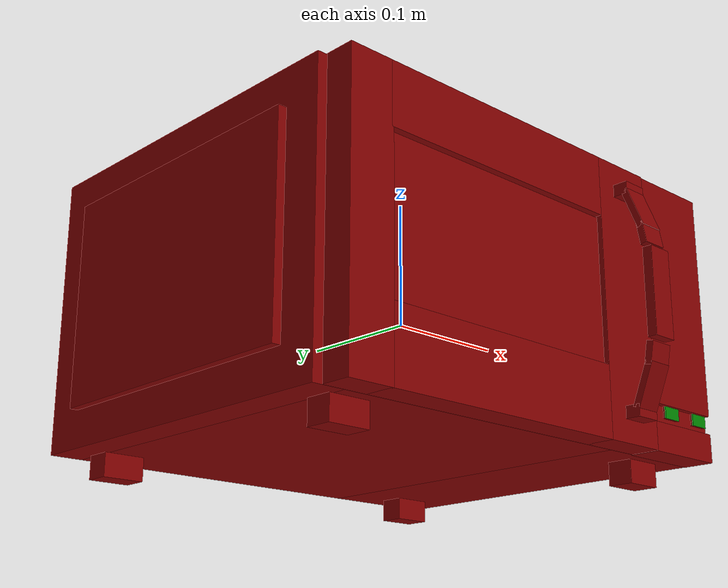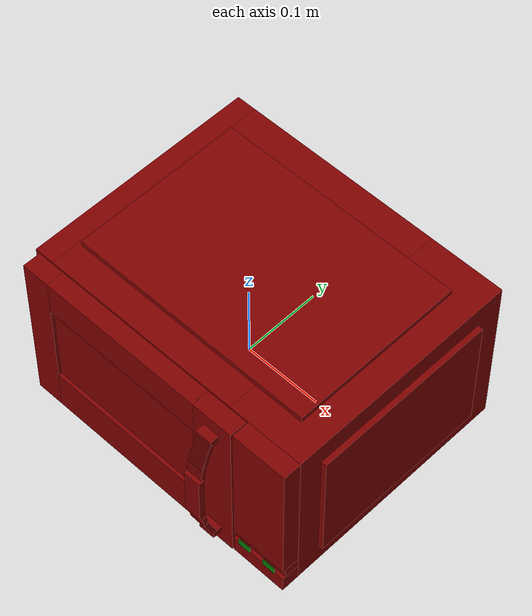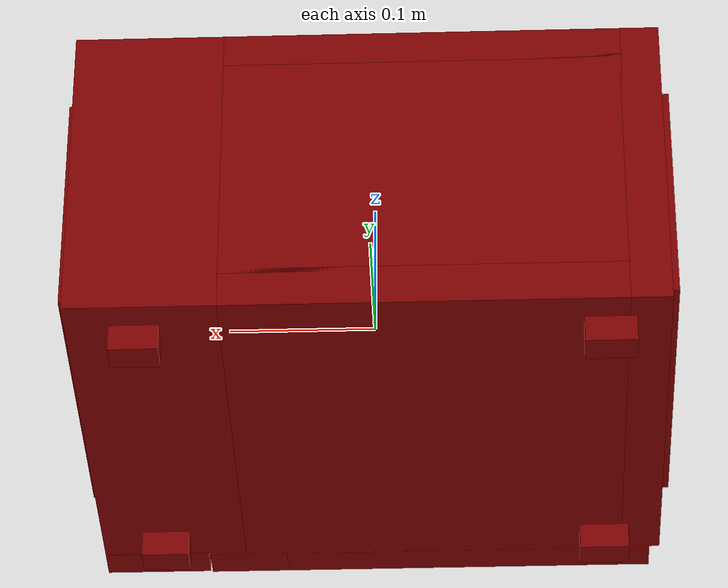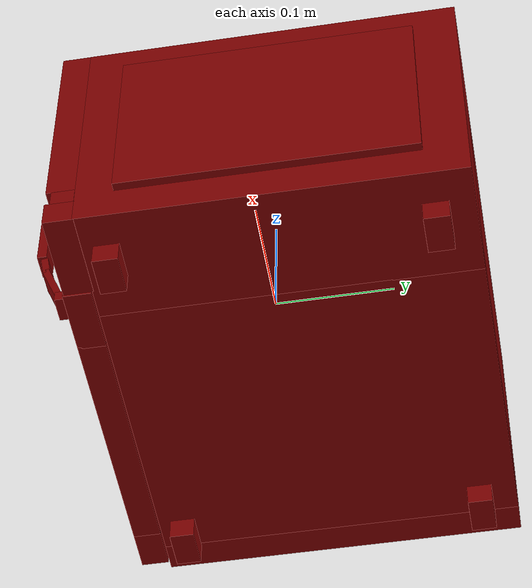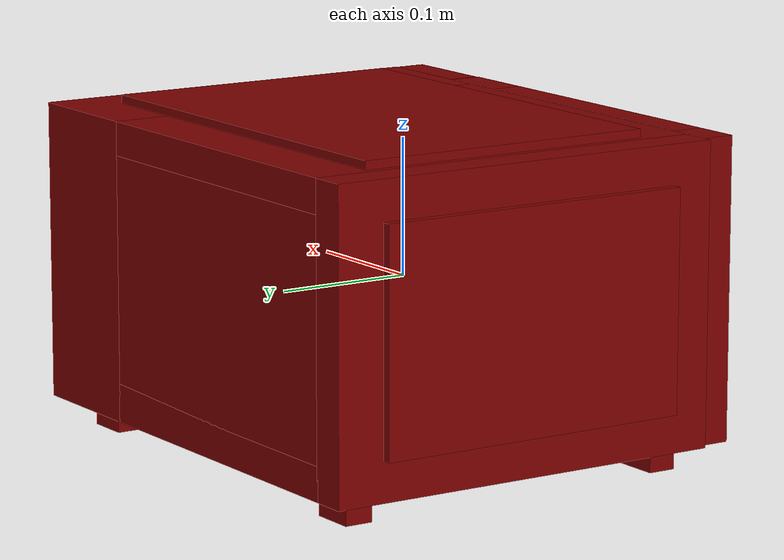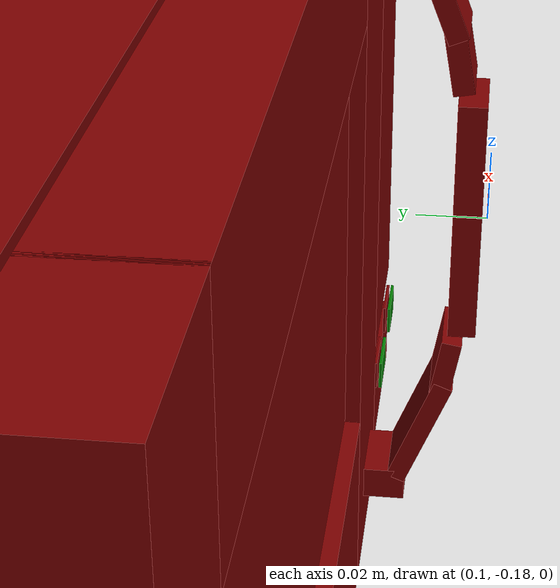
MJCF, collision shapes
<mujoco model="model">
  <compiler angle="radian"/>
  <asset>
    <mesh file="visuals/door.obj" name="door_vis"/>
    <mesh file="visuals/door_Clear.obj" name="door_Clear_vis"/>
    <mesh file="visuals/Body001.obj" name="Body001_vis"/>
    <mesh file="visuals/Button001.obj" name="Button001_vis"/>
    <mesh file="visuals/Button002.obj" name="Button002_vis"/>
    <mesh file="visuals/Disc001.obj" name="Disc001_vis"/>
    <texture file="visuals/T_BC001.png" name="Body001_material" type="2d"/>
    <material name="Body001_material" rgba="1 1 1 1.0" texture="Body001_material" shininess="0.5" specular="0.3103448502657381"/>
    <texture file="visuals/T_BC001.png" name="door_material" type="2d"/>
    <material name="door_material" rgba="1 1 1 1.0" texture="door_material" shininess="0.5" specular="0.3103448502657381"/>
    <texture file="visuals/T_BC001.png" name="door_Clear_material" type="2d"/>
    <material name="door_Clear_material" rgba="1 1 1 0.800000011920929" texture="door_Clear_material" shininess="0.5" specular="0.3103448502657381"/>
    <texture file="visuals/T_BC001.png" name="Button001_material" type="2d"/>
    <material name="Button001_material" rgba="1 1 1 1.0" texture="Button001_material" shininess="0.5" specular="0.3103448502657381"/>
    <texture file="visuals/T_BC001.png" name="Button002_material" type="2d"/>
    <material name="Button002_material" rgba="1 1 1 1.0" texture="Button002_material" shininess="0.5" specular="0.3103448502657381"/>
    <texture file="visuals/T_BC001.png" name="Disc001_material" type="2d"/>
    <material name="Disc001_material" rgba="1 1 1 1.0" texture="Disc001_material" shininess="0.5" specular="0.3103448502657381"/>
  </asset>
  <default>
    <default class="visual">
      <geom conaffinity="0" contype="0" group="1" type="mesh"/>
    </default>
    <default class="collision">
      <geom group="0" rgba="0.5 0 0 0.5"/>
    </default>
    <default class="spawn">
      <geom group="0" rgba="1 1 1 0.5" contype="0" conaffinity="0"/>
      <site group="0" rgba="1 1 1 0.5"/>
    </default>
    <default class="region">
      <geom group="1" conaffinity="0" contype="0" rgba="0 1 0 0"/>
    </default>
  </default>
  <worldbody>
    <body>
      <body name="object">
        <geom class="collision" type="box" pos="0.1391647756099701 -0.1490889936685562 -0.07307254523038864" size="0.008458821102976799 0.0004508761630859226 0.004545900039374828" quat="1.0 0.0 0.0 0.0" name="start_button" rgba="0.0 0.5 0 0.5"/>
        <geom class="collision" type="box" pos="0.17508941888809204 -0.1490889936685562 -0.07310604304075241" size="0.008458821102976799 0.0004508761630859226 0.004545900039374828" quat="1.0 0.0 0.0 0.0" name="stop_button" rgba="0.0 0.5 0 0.5"/>
        <geom class="collision" type="box" pos="-0.04159218445420265 -0.001982901245355606 -0.05614791437983513" size="0.11045978963375092 0.11045978963375092 0.0024821958504617214" quat="1.0 0.0 0.0 0.0" name="tray" rgba="0 1 0 0.5"/>
        <geom mesh="Body001_vis" type="mesh" solimp="0.998 0.998 0.001" solref="0.001 1" density="100" friction="0.95 0.3 0.1" class="visual" material="Body001_material"/>
        <geom class="collision" type="box" pos="-0.18025314807891846 0.027802564203739166 0.005983977112919092" size="0.013358832336962223 0.15167395770549774 0.10900428146123886" quat="1.0 0.0 0.0 0.0"/>
        <geom class="collision" type="box" pos="0.14425525069236755 0.027802564203739166 0.005983977112919092" size="0.04935670644044876 0.15167395770549774 0.10900428146123886" quat="1.0 0.0 0.0 0.0"/>
        <geom class="collision" type="box" pos="-0.0362883061170578 0.02780255116522312 0.10275974869728088" size="0.01222850102931261 0.15167395770549774 0.1317581832408905" quat="0.7071068286895752 -4.750302551315144e-08 0.7071067094802856 4.7503014855010406e-08"/>
        <geom class="collision" type="box" pos="-0.0362883061170578 0.02780255116522312 -0.08892325311899185" size="0.014097047038376331 0.15167395770549774 0.1317581832408905" quat="0.7071068286895752 -4.750302551315144e-08 0.7071067094802856 4.7503014855010406e-08"/>
        <geom class="collision" type="box" pos="-0.0362883098423481 0.14821013808250427 0.0076854294165968895" size="0.03126637265086174 0.08601274341344833 0.1317581832408905" quat="0.4999999701976776 0.5 0.5000000596046448 0.4999999403953552"/>
        <geom class="collision" type="box" pos="-0.001670405501499772 0.0256187804043293 0.11840248107910156" size="0.003136024810373783 0.11250162869691849 0.1611160784959793" quat="0.7071068286895752 -4.750302551315144e-08 0.7071067094802856 4.7503014855010406e-08"/>
        <geom class="collision" type="box" pos="-0.19688734412193298 0.025606103241443634 0.006056216079741716" size="0.00337331835180521 0.11890270560979843 0.08001849800348282" quat="1.0 -4.004205956609566e-15 -5.960463056453591e-08 -6.717942824252532e-08"/>
        <geom class="collision" type="box" pos="0.19688449800014496 0.025606103241443634 0.006056216079741716" size="0.0033761418890208006 0.11890270560979843 0.08001849800348282" quat="1.0 -4.004205956609566e-15 -5.960463056453591e-08 -6.717942824252532e-08"/>
        <geom class="collision" type="box" pos="0.1575535535812378 -0.13480769097805023 0.024206168949604034" size="0.03605840727686882 0.012139788828790188 0.09060600399971008" quat="1.0 0.0 0.0 0.0"/>
        <geom class="collision" type="box" pos="0.1575535535812378 -0.13480769097805023 -0.09191380441188812" size="0.03605840727686882 0.012139788828790188 0.011282567866146564" quat="1.0 0.0 0.0 0.0"/>
        <geom class="collision" type="box" pos="0.1575535535812378 -0.13333268463611603 -0.07345106452703476" size="0.03605840727686882 0.009348908439278603 0.007389742881059647" quat="1.0 0.0 0.0 0.0"/>
        <geom class="collision" type="box" pos="0.1489536464214325 -0.10338227450847626 -0.1122860312461853" size="0.016204161569476128 0.010294051840901375 0.009252495132386684" quat="1.0 0.0 0.0 0.0"/>
        <geom class="collision" type="box" pos="-0.1545639932155609 -0.10338227450847626 -0.1122860312461853" size="0.01670595072209835 0.010294051840901375 0.009252495132386684" quat="1.0 0.0 0.0 0.0"/>
        <geom class="collision" type="box" pos="0.1489536464214325 0.1492520421743393 -0.1122860312461853" size="0.016204161569476128 0.010294051840901375 0.009252495132386684" quat="1.0 0.0 0.0 0.0"/>
        <geom class="collision" type="box" pos="-0.1545639932155609 0.1492520421743393 -0.1122860312461853" size="0.01670595072209835 0.010294051840901375 0.009252495132386684" quat="1.0 0.0 0.0 0.0"/>
        <body name="door">
          <joint axis="0.0 0.0 1.0" pos="-0.1817634403705597 -0.13645607233047485 0.0058079008013010025" limited="true" name="microjoint" range="-1.5707963267948966 0.0" type="hinge" damping="1" frictionloss="1" armature=".01" stiffness="0.05"/>
          <geom mesh="door_vis" type="mesh" solimp="0.998 0.998 0.001" solref="0.001 1" density="100" friction="0.95 0.3 0.1" class="visual" material="door_material"/>
          <geom class="collision" type="box" pos="-0.16829226911067963 -0.13651078939437866 0.005807910580188036" size="0.011538033373653889 0.10900427401065826 0.01846720464527607" quat="0.4999999701976776 0.5 0.5000000596046448 0.4999999403953552"/>
          <geom class="collision" type="box" pos="0.09259803593158722 -0.13651078939437866 0.005807909648865461" size="0.011538032442331314 0.10900427401065826 0.027508338913321495" quat="0.4999999701976776 0.5 0.5000000596046448 0.4999999403953552"/>
          <geom class="collision" type="box" pos="-0.042233772575855255 -0.13651080429553986 0.09120413661003113" size="0.011538032442331314 0.10900427401065826 0.023608049377799034" quat="7.472144147868676e-08 0.7071067094802856 0.7071068286895752 3.204871035222823e-08"/>
          <geom class="collision" type="box" pos="-0.042233772575855255 -0.13651080429553986 -0.07562852650880814" size="0.011538032442331314 0.10900427401065826 0.027567848563194275" quat="7.472144147868676e-08 0.7071067094802856 0.7071068286895752 3.204871035222823e-08"/>
          <geom class="collision" type="box" pos="0.09299615025520325 -0.15359172224998474 0.09202709794044495" size="0.006321795750409365 0.004779924638569355 0.010607033967971802" quat="0.4999999701976776 0.5 0.5000000596046448 0.4999999403953552"/>
          <geom class="collision" type="box" pos="0.09299615025520325 -0.1637401282787323 0.07395224273204803" size="0.01755206286907196 0.0028752549551427364 0.010607033967971802" quat="0.1339872181415558 0.6942963600158691 0.13398760557174683 0.6942962408065796"/>
          <geom class="collision" type="box" pos="0.09299615025520325 -0.17058181762695312 0.0519951656460762" size="0.008785058744251728 0.0028752547223120928 0.010607033967971802" quat="0.06278882175683975 0.7043136358261108 0.06278854608535767 0.7043134570121765"/>
          <geom class="collision" type="box" pos="0.09299615025520325 -0.15359172224998474 -0.08070486038923264" size="0.006321795750409365 0.004779924638569355 0.010607033967971802" quat="0.5000000596046448 -0.49999988079071045 -0.5000001192092896 0.4999999403953552"/>
          <geom class="collision" type="box" pos="0.09299615025520325 -0.1637401282787323 -0.062094684690237045" size="0.01755206473171711 0.0028752547223120928 0.010607033967971802" quat="0.13398747146129608 -0.6942963004112244 -0.13398753106594086 0.6942963004112244"/>
          <geom class="collision" type="box" pos="0.09299615025520325 -0.17058181762695312 -0.04013760760426521" size="0.008785059675574303 0.0028752547223120928 0.010607033967971802" quat="0.06278882175683975 -0.7043135166168213 -0.0627887174487114 0.7043135762214661"/>
          <geom class="collision" type="box" pos="0.09299615025520325 -0.17462469637393951 0.005770817864686251" size="0.003933775704354048 0.03446405753493309 0.010607033967971802" quat="0.4999999701976776 0.5 0.5000000596046448 0.4999999403953552" name="door_handle"/>
          <body name="door_Clear">
            <geom mesh="door_Clear_vis" type="mesh" solimp="0.998 0.998 0.001" solref="0.001 1" density="100" friction="0.95 0.3 0.1" class="visual" material="door_Clear_material"/>
            <geom class="collision" type="box" pos="-0.04249154403805733 -0.14076390862464905 0.009767692536115646" size="0.0030851110350340605 0.05685120448470116 0.10778980702161789" quat="0.4999999701976776 0.5 0.5000000596046448 0.4999999403953552"/>
          </body>
        </body>
        <body name="Button001">
          <joint axis="0.0 1.0 0.0" pos="0.1391647756099701 -0.14831411838531494 -0.07307254523038864" limited="true" name="Button001_joint" range="0.0 0.0015" type="slide" damping="1" frictionloss="1" armature=".01" stiffness="0.05"/>
          <geom mesh="Button001_vis" type="mesh" solimp="0.998 0.998 0.001" solref="0.001 1" density="100" friction="0.95 0.3 0.1" class="visual" material="Button001_material"/>
          <geom class="collision" type="box" pos="0.1391647756099701 -0.14755727350711823 -0.07307254523038864" size="0.008458821102976799 0.0004508761630859226 0.004545900039374828" quat="1.0 0.0 0.0 0.0"/>
        </body>
        <body name="Button002">
          <joint axis="0.0 1.0 0.0" pos="0.17508941888809204 -0.14831411838531494 -0.07310604304075241" limited="true" name="Button002_joint" range="0.0 0.0015" type="slide" damping="1" frictionloss="1" armature=".01" stiffness="0.05"/>
          <geom mesh="Button002_vis" type="mesh" solimp="0.998 0.998 0.001" solref="0.001 1" density="100" friction="0.95 0.3 0.1" class="visual" material="Button002_material"/>
          <geom class="collision" type="box" pos="0.17508941888809204 -0.14755727350711823 -0.07310604304075241" size="0.008458821102976799 0.0004508761630859226 0.004545900039374828" quat="1.0 0.0 0.0 0.0"/>
        </body>
        <body name="Disc001">
          <joint axis="0.0 0.0 1.0" pos="-0.04159218445420265 -0.001982901245355606 -0.06573697924613953" limited="false" name="Disc001_joint" range="0 360" type="hinge" damping="1" frictionloss="1" armature=".01" stiffness="0.05"/>
          <geom mesh="Disc001_vis" type="mesh" solimp="0.998 0.998 0.001" solref="0.001 1" density="100" friction="0.95 0.3 0.1" class="visual" material="Disc001_material"/>
          <geom class="collision" type="cylinder" pos="-0.04159218445420265 -0.001982901245355606 -0.06465651839971542" size="0.11045978963375092 0.00362657499499619" quat="1.0 0.0 0.0 0.0"/>
        </body>
        <geom class="region" name="reg_main" type="box" pos="-3.725290298461914e-09 0.0157138854265213 0.0" size="0.20026065409183502 0.1637626588344574 0.12153852730989456"/>
        <geom class="region" name="reg_int" type="box" pos="-0.035727664828300476 4.4655054807662964e-05 0.007891897112131119" size="0.1312086135149002 0.11842525377869606 0.08368413522839546"/>
      </body>
    </body>
  </worldbody>
  <actuator>
    <motor name="microjoint_actuator" joint="microjoint" gear="10"/>
    <motor name="Button001_joint_actuator" joint="Button001_joint" gear="0.1"/>
    <motor name="Button002_joint_actuator" joint="Button002_joint" gear="0.1"/>
    <motor name="Disc001_joint_actuator" joint="Disc001_joint" gear="10"/>
  </actuator>
</mujoco>
